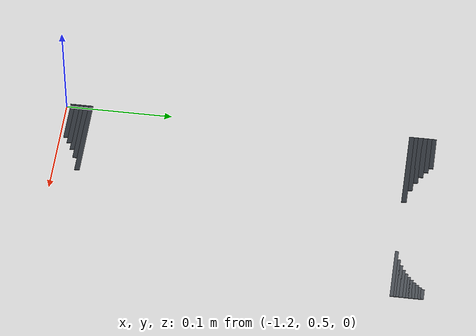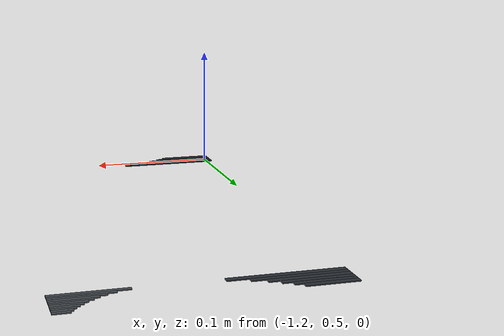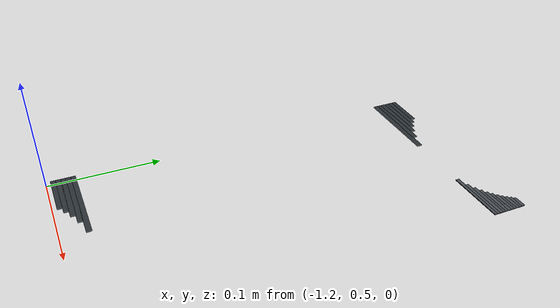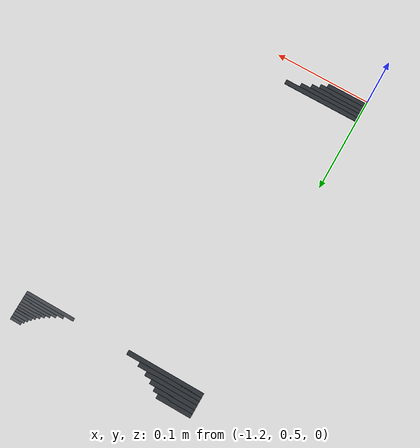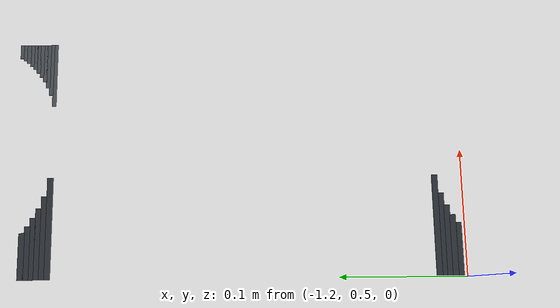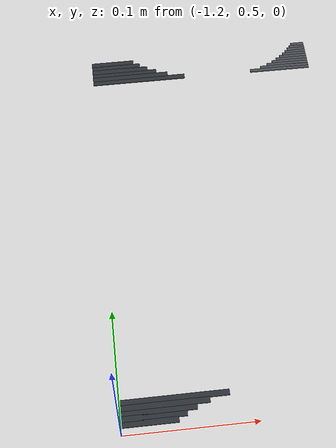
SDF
<sdf version="1.6">
 <world name="sandbox">
  <include><uri>model://sun</uri></include>
  <model name="outer_junction_-1.2_0.525_00">
   <static>true</static>
   <pose>-1.160153 0.522917 0.004350 0.000000 0.000000 0.000000</pose>
   <link name="body">
    <visual name="visual">
     <geometry><box><size>0.079694 0.004667 0.000700</size></box></geometry>
     <material><ambient>0.16 0.18 0.20 1</ambient><diffuse>0.16 0.18 0.20 1</diffuse></material>
    </visual>
   </link>
  </model>
  <model name="outer_junction_-1.2_0.525_01">
   <static>true</static>
   <pose>-1.167399 0.518750 0.004350 0.000000 0.000000 0.000000</pose>
   <link name="body">
    <visual name="visual">
     <geometry><box><size>0.065201 0.004667 0.000700</size></box></geometry>
     <material><ambient>0.16 0.18 0.20 1</ambient><diffuse>0.16 0.18 0.20 1</diffuse></material>
    </visual>
   </link>
  </model>
  <model name="outer_junction_-1.2_0.525_02">
   <static>true</static>
   <pose>-1.172220 0.514583 0.004350 0.000000 0.000000 0.000000</pose>
   <link name="body">
    <visual name="visual">
     <geometry><box><size>0.055561 0.004667 0.000700</size></box></geometry>
     <material><ambient>0.16 0.18 0.20 1</ambient><diffuse>0.16 0.18 0.20 1</diffuse></material>
    </visual>
   </link>
  </model>
  <model name="outer_junction_-1.2_0.525_03">
   <static>true</static>
   <pose>-1.176000 0.510417 0.004350 0.000000 0.000000 0.000000</pose>
   <link name="body">
    <visual name="visual">
     <geometry><box><size>0.048000 0.004667 0.000700</size></box></geometry>
     <material><ambient>0.16 0.18 0.20 1</ambient><diffuse>0.16 0.18 0.20 1</diffuse></material>
    </visual>
   </link>
  </model>
  <model name="outer_junction_-1.2_0.525_04">
   <static>true</static>
   <pose>-1.179148 0.506250 0.004350 0.000000 0.000000 0.000000</pose>
   <link name="body">
    <visual name="visual">
     <geometry><box><size>0.041704 0.004667 0.000700</size></box></geometry>
     <material><ambient>0.16 0.18 0.20 1</ambient><diffuse>0.16 0.18 0.20 1</diffuse></material>
    </visual>
   </link>
  </model>
  <model name="outer_junction_-1.2_0.825_00">
   <static>true</static>
   <pose>-1.160153 0.827083 0.004350 0.000000 0.000000 0.000000</pose>
   <link name="body">
    <visual name="visual">
     <geometry><box><size>0.079694 0.004667 0.000700</size></box></geometry>
     <material><ambient>0.16 0.18 0.20 1</ambient><diffuse>0.16 0.18 0.20 1</diffuse></material>
    </visual>
   </link>
  </model>
  <model name="outer_junction_-1.2_0.825_01">
   <static>true</static>
   <pose>-1.167399 0.831250 0.004350 0.000000 0.000000 0.000000</pose>
   <link name="body">
    <visual name="visual">
     <geometry><box><size>0.065201 0.004667 0.000700</size></box></geometry>
     <material><ambient>0.16 0.18 0.20 1</ambient><diffuse>0.16 0.18 0.20 1</diffuse></material>
    </visual>
   </link>
  </model>
  <model name="outer_junction_-1.2_0.825_02">
   <static>true</static>
   <pose>-1.172220 0.835417 0.004350 0.000000 0.000000 0.000000</pose>
   <link name="body">
    <visual name="visual">
     <geometry><box><size>0.055561 0.004667 0.000700</size></box></geometry>
     <material><ambient>0.16 0.18 0.20 1</ambient><diffuse>0.16 0.18 0.20 1</diffuse></material>
    </visual>
   </link>
  </model>
  <model name="outer_junction_-1.2_0.825_03">
   <static>true</static>
   <pose>-1.176000 0.839583 0.004350 0.000000 0.000000 0.000000</pose>
   <link name="body">
    <visual name="visual">
     <geometry><box><size>0.048000 0.004667 0.000700</size></box></geometry>
     <material><ambient>0.16 0.18 0.20 1</ambient><diffuse>0.16 0.18 0.20 1</diffuse></material>
    </visual>
   </link>
  </model>
  <model name="outer_junction_-1.2_0.825_04">
   <static>true</static>
   <pose>-1.179148 0.843750 0.004350 0.000000 0.000000 0.000000</pose>
   <link name="body">
    <visual name="visual">
     <geometry><box><size>0.041704 0.004667 0.000700</size></box></geometry>
     <material><ambient>0.16 0.18 0.20 1</ambient><diffuse>0.16 0.18 0.20 1</diffuse></material>
    </visual>
   </link>
  </model>
  <model name="outer_junction_-1.2_0.825_05">
   <static>true</static>
   <pose>-1.181852 0.847917 0.004350 0.000000 0.000000 0.000000</pose>
   <link name="body">
    <visual name="visual">
     <geometry><box><size>0.036296 0.004667 0.000700</size></box></geometry>
     <material><ambient>0.16 0.18 0.20 1</ambient><diffuse>0.16 0.18 0.20 1</diffuse></material>
    </visual>
   </link>
  </model>
  <model name="parking_A_exit_mouth_-1_00">
   <static>true</static>
   <pose>-1.035901 0.826354 0.004350 0.000000 0.000000 0.000000</pose>
   <link name="body">
    <visual name="visual">
     <geometry><box><size>0.051801 0.003208 0.000700</size></box></geometry>
     <material><ambient>0.27 0.29 0.31 1</ambient><diffuse>0.27 0.29 0.31 1</diffuse></material>
    </visual>
   </link>
  </model>
  <model name="parking_A_exit_mouth_-1_01">
   <static>true</static>
   <pose>-1.031190 0.829062 0.004350 0.000000 0.000000 0.000000</pose>
   <link name="body">
    <visual name="visual">
     <geometry><box><size>0.042381 0.003208 0.000700</size></box></geometry>
     <material><ambient>0.27 0.29 0.31 1</ambient><diffuse>0.27 0.29 0.31 1</diffuse></material>
    </visual>
   </link>
  </model>
  <model name="parking_A_exit_mouth_-1_02">
   <static>true</static>
   <pose>-1.028057 0.831771 0.004350 0.000000 0.000000 0.000000</pose>
   <link name="body">
    <visual name="visual">
     <geometry><box><size>0.036115 0.003208 0.000700</size></box></geometry>
     <material><ambient>0.27 0.29 0.31 1</ambient><diffuse>0.27 0.29 0.31 1</diffuse></material>
    </visual>
   </link>
  </model>
  <model name="parking_A_exit_mouth_-1_03">
   <static>true</static>
   <pose>-1.025600 0.834479 0.004350 0.000000 0.000000 0.000000</pose>
   <link name="body">
    <visual name="visual">
     <geometry><box><size>0.031200 0.003208 0.000700</size></box></geometry>
     <material><ambient>0.27 0.29 0.31 1</ambient><diffuse>0.27 0.29 0.31 1</diffuse></material>
    </visual>
   </link>
  </model>
  <model name="parking_A_exit_mouth_-1_04">
   <static>true</static>
   <pose>-1.023554 0.837187 0.004350 0.000000 0.000000 0.000000</pose>
   <link name="body">
    <visual name="visual">
     <geometry><box><size>0.027108 0.003208 0.000700</size></box></geometry>
     <material><ambient>0.27 0.29 0.31 1</ambient><diffuse>0.27 0.29 0.31 1</diffuse></material>
    </visual>
   </link>
  </model>
  <model name="parking_A_exit_mouth_-1_05">
   <static>true</static>
   <pose>-1.021796 0.839896 0.004350 0.000000 0.000000 0.000000</pose>
   <link name="body">
    <visual name="visual">
     <geometry><box><size>0.023593 0.003208 0.000700</size></box></geometry>
     <material><ambient>0.27 0.29 0.31 1</ambient><diffuse>0.27 0.29 0.31 1</diffuse></material>
    </visual>
   </link>
  </model>
  <model name="parking_A_exit_mouth_-1_06">
   <static>true</static>
   <pose>-1.020259 0.842604 0.004350 0.000000 0.000000 0.000000</pose>
   <link name="body">
    <visual name="visual">
     <geometry><box><size>0.020518 0.003208 0.000700</size></box></geometry>
     <material><ambient>0.27 0.29 0.31 1</ambient><diffuse>0.27 0.29 0.31 1</diffuse></material>
    </visual>
   </link>
  </model>
  <model name="parking_A_exit_mouth_-1_07">
   <static>true</static>
   <pose>-1.018899 0.845312 0.004350 0.000000 0.000000 0.000000</pose>
   <link name="body">
    <visual name="visual">
     <geometry><box><size>0.017798 0.003208 0.000700</size></box></geometry>
     <material><ambient>0.27 0.29 0.31 1</ambient><diffuse>0.27 0.29 0.31 1</diffuse></material>
    </visual>
   </link>
  </model>
  <model name="parking_A_exit_mouth_-1_08">
   <static>true</static>
   <pose>-1.017687 0.848021 0.004350 0.000000 0.000000 0.000000</pose>
   <link name="body">
    <visual name="visual">
     <geometry><box><size>0.015374 0.003208 0.000700</size></box></geometry>
     <material><ambient>0.27 0.29 0.31 1</ambient><diffuse>0.27 0.29 0.31 1</diffuse></material>
    </visual>
   </link>
  </model>
  <model name="parking_A_exit_mouth_-1_09">
   <static>true</static>
   <pose>-1.016602 0.850729 0.004350 0.000000 0.000000 0.000000</pose>
   <link name="body">
    <visual name="visual">
     <geometry><box><size>0.013204 0.003208 0.000700</size></box></geometry>
     <material><ambient>0.27 0.29 0.31 1</ambient><diffuse>0.27 0.29 0.31 1</diffuse></material>
    </visual>
   </link>
  </model>
  <model name="parking_A_exit_mouth_-1_10">
   <static>true</static>
   <pose>-1.015629 0.853437 0.004350 0.000000 0.000000 0.000000</pose>
   <link name="body">
    <visual name="visual">
     <geometry><box><size>0.011258 0.003208 0.000700</size></box></geometry>
     <material><ambient>0.27 0.29 0.31 1</ambient><diffuse>0.27 0.29 0.31 1</diffuse></material>
    </visual>
   </link>
  </model>
 </world>
</sdf>
